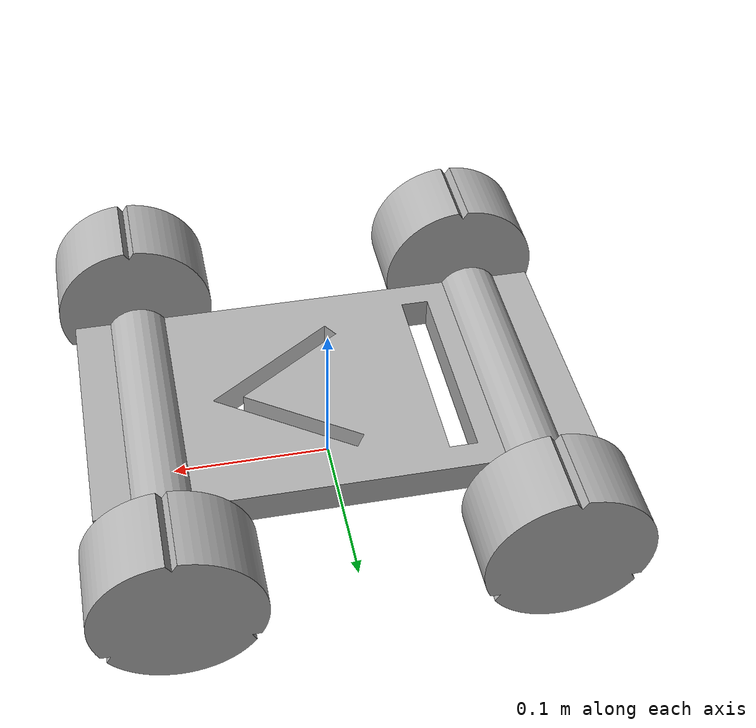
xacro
<?xml version="1.0" ?>
<robot name="Ackerman" xmlns:xacro="http://www.ros.org/wiki/xacro">

<xacro:include filename="$(find Ackerman_description)/urdf/materials.xacro" />
<xacro:include filename="$(find Ackerman_description)/urdf/ros2_control.xacro" />
<xacro:include filename="$(find Ackerman_description)/urdf/Ackerman.trans" />
<xacro:include filename="$(find Ackerman_description)/urdf/Ackerman.gazebo" />
<link name="base_link">
  <inertial>
    <origin xyz="0.0020510622368631656 0.0 0.05" rpy="0 0 0"/>
    <mass value="8.144574973020813"/>
    <inertia ixx="0.01851" iyy="0.069982" izz="0.087523" ixy="0.0" iyz="0.0" ixz="-0.0"/>
  </inertial>
  <visual>
    <origin xyz="0 0 0" rpy="0 0 0"/>
    <geometry>
      <mesh filename="file://$(find Ackerman_description)/meshes/base_link.stl" scale="0.001 0.001 0.001"/>
    </geometry>
    <material name="silver"/>
  </visual>
  <collision>
    <origin xyz="0 0 0" rpy="0 0 0"/>
    <geometry>
      <mesh filename="file://$(find Ackerman_description)/meshes/base_link.stl" scale="0.001 0.001 0.001"/>
    </geometry>
  </collision>
</link>

<link name="front_right_link_1">
  <inertial>
    <origin xyz="1.3877787807814457e-17 -0.045000000000000026 -1.3877787807814457e-17" rpy="0 0 0"/>
    <mass value="3.0642016881239384"/>
    <inertia ixx="0.002543" iyy="0.00381" izz="0.002543" ixy="-0.0" iyz="-0.0" ixz="0.0"/>
  </inertial>
  <visual>
    <origin xyz="-0.11 0.08 -0.05" rpy="0 0 0"/>
    <geometry>
      <mesh filename="file://$(find Ackerman_description)/meshes/front_right_link_1.stl" scale="0.001 0.001 0.001"/>
    </geometry>
    <material name="silver"/>
  </visual>
  <collision>
    <origin xyz="-0.11 0.08 -0.05" rpy="0 0 0"/>
    <geometry>
      <mesh filename="file://$(find Ackerman_description)/meshes/front_right_link_1.stl" scale="0.001 0.001 0.001"/>
    </geometry>
  </collision>
</link>

<link name="front_left_link_1">
  <inertial>
    <origin xyz="-1.3877787807814457e-17 0.044999999999999984 1.3877787807814457e-17" rpy="0 0 0"/>
    <mass value="3.0642016881239393"/>
    <inertia ixx="0.002543" iyy="0.00381" izz="0.002543" ixy="0.0" iyz="-0.0" ixz="0.0"/>
  </inertial>
  <visual>
    <origin xyz="-0.11 -0.08 -0.05" rpy="0 0 0"/>
    <geometry>
      <mesh filename="file://$(find Ackerman_description)/meshes/front_left_link_1.stl" scale="0.001 0.001 0.001"/>
    </geometry>
    <material name="silver"/>
  </visual>
  <collision>
    <origin xyz="-0.11 -0.08 -0.05" rpy="0 0 0"/>
    <geometry>
      <mesh filename="file://$(find Ackerman_description)/meshes/front_left_link_1.stl" scale="0.001 0.001 0.001"/>
    </geometry>
  </collision>
</link>

<link name="back_right_link_1">
  <inertial>
    <origin xyz="1.3877787807814457e-17 -0.044999999999999984 1.3877787807814457e-17" rpy="0 0 0"/>
    <mass value="3.0642016881239393"/>
    <inertia ixx="0.002543" iyy="0.00381" izz="0.002543" ixy="0.0" iyz="0.0" ixz="-0.0"/>
  </inertial>
  <visual>
    <origin xyz="0.11 0.08 -0.05" rpy="0 0 0"/>
    <geometry>
      <mesh filename="file://$(find Ackerman_description)/meshes/back_right_link_1.stl" scale="0.001 0.001 0.001"/>
    </geometry>
    <material name="silver"/>
  </visual>
  <collision>
    <origin xyz="0.11 0.08 -0.05" rpy="0 0 0"/>
    <geometry>
      <mesh filename="file://$(find Ackerman_description)/meshes/back_right_link_1.stl" scale="0.001 0.001 0.001"/>
    </geometry>
  </collision>
</link>

<link name="back_left_link_1">
  <inertial>
    <origin xyz="-1.3877787807814457e-17 0.045000000000000026 -1.3877787807814457e-17" rpy="0 0 0"/>
    <mass value="3.0642016881239384"/>
    <inertia ixx="0.002543" iyy="0.00381" izz="0.002543" ixy="-0.0" iyz="0.0" ixz="0.0"/>
  </inertial>
  <visual>
    <origin xyz="0.11 -0.08 -0.05" rpy="0 0 0"/>
    <geometry>
      <mesh filename="file://$(find Ackerman_description)/meshes/back_left_link_1.stl" scale="0.001 0.001 0.001"/>
    </geometry>
    <material name="silver"/>
  </visual>
  <collision>
    <origin xyz="0.11 -0.08 -0.05" rpy="0 0 0"/>
    <geometry>
      <mesh filename="file://$(find Ackerman_description)/meshes/back_left_link_1.stl" scale="0.001 0.001 0.001"/>
    </geometry>
  </collision>
</link>

<joint name="front_right_joint" type="continuous">
  <origin xyz="0.11 -0.08 0.05" rpy="0 0 0"/>
  <parent link="base_link"/>
  <child link="front_right_link_1"/>
  <axis xyz="0.0 1.0 0.0"/>
</joint>

<joint name="front_left_joint" type="continuous">
  <origin xyz="0.11 0.08 0.05" rpy="0 0 0"/>
  <parent link="base_link"/>
  <child link="front_left_link_1"/>
  <axis xyz="0.0 1.0 0.0"/>
</joint>

<joint name="back_right_joint" type="continuous">
  <origin xyz="-0.11 -0.08 0.05" rpy="0 0 0"/>
  <parent link="base_link"/>
  <child link="back_right_link_1"/>
  <axis xyz="0.0 1.0 0.0"/>
</joint>

<joint name="back_left_joint" type="continuous">
  <origin xyz="-0.11 0.08 0.05" rpy="0 0 0"/>
  <parent link="base_link"/>
  <child link="back_left_link_1"/>
  <axis xyz="0.0 1.0 0.0"/>
</joint>

</robot>

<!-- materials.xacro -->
<robot name="Ackerman" xmlns:xacro="http://www.ros.org/wiki/xacro" >

<material name="silver">
  <color rgba="0.700 0.700 0.700 1.000"/>
</material>

</robot>

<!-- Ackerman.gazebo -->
<robot name="Ackerman" xmlns:xacro="http://www.ros.org/wiki/xacro" >

<xacro:property name="body_color" value="Gazebo/Silver" />

<gazebo reference="base_link">
  <material>${body_color}</material>
  <mu1>0.2</mu1>
  <mu2>0.2</mu2>
  <self_collide>true</self_collide>
  <gravity>true</gravity>
</gazebo>

<gazebo reference="front_right_link_1">
  <material>${body_color}</material>
  <mu1>0.2</mu1>
  <mu2>0.2</mu2>
  <self_collide>true</self_collide>
</gazebo>

<gazebo reference="front_left_link_1">
  <material>${body_color}</material>
  <mu1>0.2</mu1>
  <mu2>0.2</mu2>
  <self_collide>true</self_collide>
</gazebo>

<gazebo reference="back_right_link_1">
  <material>${body_color}</material>
  <mu1>0.2</mu1>
  <mu2>0.2</mu2>
  <self_collide>true</self_collide>
</gazebo>

<gazebo reference="back_left_link_1">
  <material>${body_color}</material>
  <mu1>0.2</mu1>
  <mu2>0.2</mu2>
  <self_collide>true</self_collide>
</gazebo>

</robot>
